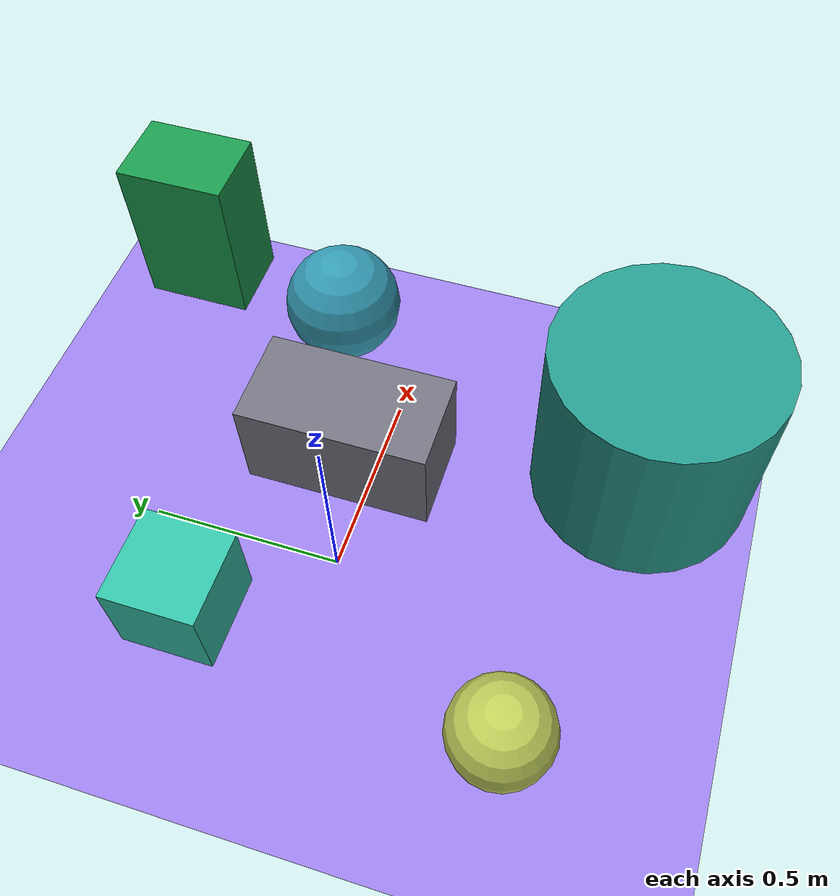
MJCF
<mujoco>
   <asset>
<texture type="skybox" builtin="gradient" rgb1="0.4 0.1 0.4" rgb2="0.1 0.6 0.8" width="256" height="256"/>
<texture name="checker_0" builtin="checker" type="2d" rgb1="0.0 1.0 0.4" rgb2="0.4 0.5 0.9" width="200" height="200"/>
<texture name="gradient_1" builtin="gradient" rgb1="0.3 0.5 0.3" rgb2="0.0 0.7 0.8" width="200" height="200"/>
<texture name="gradient_2" builtin="gradient" rgb1="0.7 0.6 0.3" rgb2="0.8 1.0 0.4" width="200" height="200"/>
<texture name="gradient_3" builtin="gradient" rgb1="0.4 0.4 0.3" rgb2="0.5 0.5 0.7" width="200" height="200"/>
<texture name="checker_4" builtin="checker" type="2d" rgb1="0.1 0.3 0.4" rgb2="0.3 0.9 1.0" width="200" height="200"/>
<texture name="flat_5" builtin="flat" rgb1="0.1 0.6 0.3" rgb2="0.1 0.6 0.3"  width="200" height="200"/><material name="checker_0_mat" reflectance="0" texrepeat="6 6" texture="checker_0" texuniform="false" />
<material name="gradient_1_mat" reflectance="0" texture="gradient_1" texuniform="true"/>
<material name="gradient_2_mat" reflectance="0" texture="gradient_2" texuniform="true"/>
<material name="gradient_3_mat" reflectance="0" texture="gradient_3" texuniform="true"/>
<material name="checker_4_mat" reflectance="0" texrepeat="7 7" texture="checker_4" texuniform="false" />
<material name="flat_5_mat" reflectance="0" texture="flat_5" texuniform="true"/>
   </asset>

   <worldbody>
      <light diffuse=".9 .9 .9" pos="0 0 3" dir="0 0 -1"/>
     <geom type="plane" size="1 1 0.1" rgba="0.6 0.5 0.9 1"/>
<geom type="box" pos="-0.23 0.31 0.12" size="0.12 0.12 0.12" material="checker_0_mat" />
<geom type="cylinder" pos="0.48 -0.68 0.26" size="0.29 0.26 0.26" material="gradient_1_mat" />
<geom type="sphere" pos="-0.34 -0.52 0.13" size="0.13 0.13 0.13" material="gradient_2_mat" />
<geom type="box" pos="0.31 0.07 0.14" size="0.13 0.25 0.14" material="gradient_3_mat" />
<geom type="sphere" pos="0.7 0.23 0.16" size="0.16 0.16 0.16" material="checker_4_mat" />
<geom type="box" pos="0.82 0.71 0.23" size="0.11 0.15 0.23" material="flat_5_mat" /><camera euler="60 0 180" fovy="60" name="camera_a" pos="0 -1.5 1"></camera>   </worldbody>
</mujoco>
